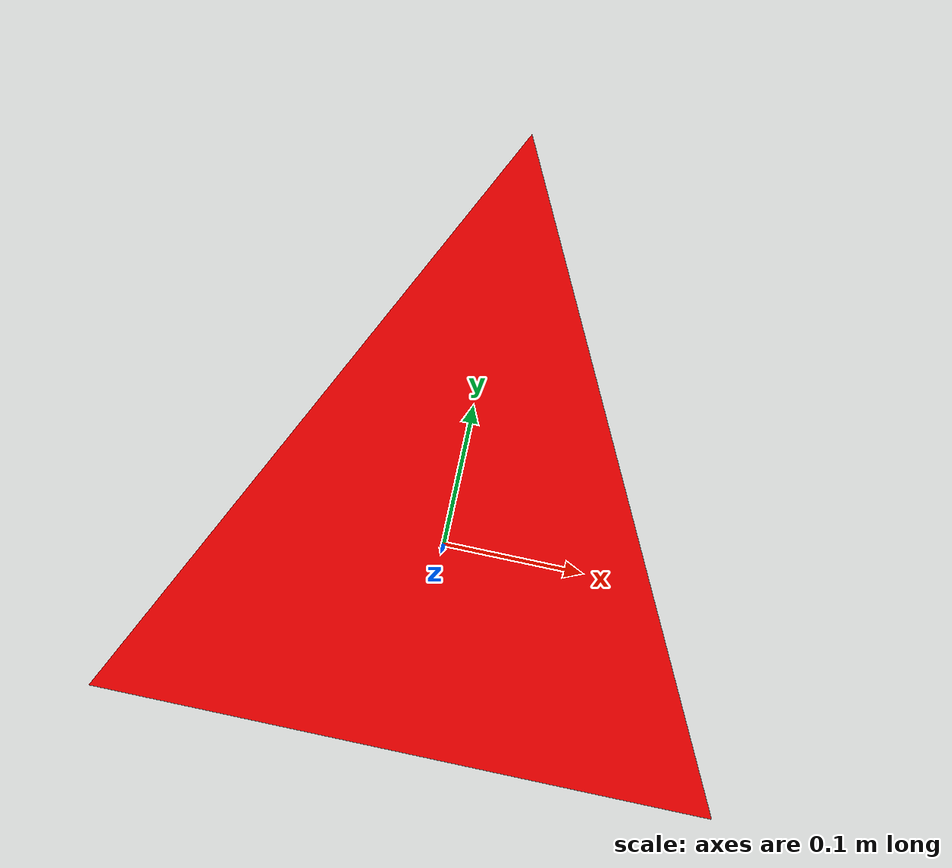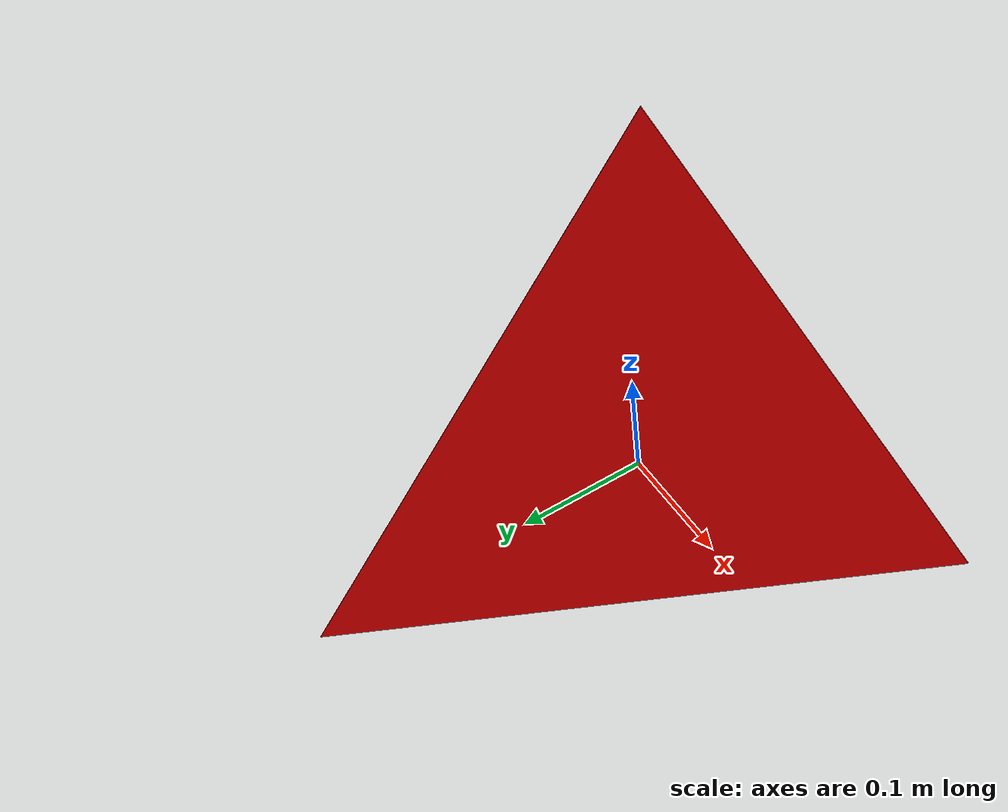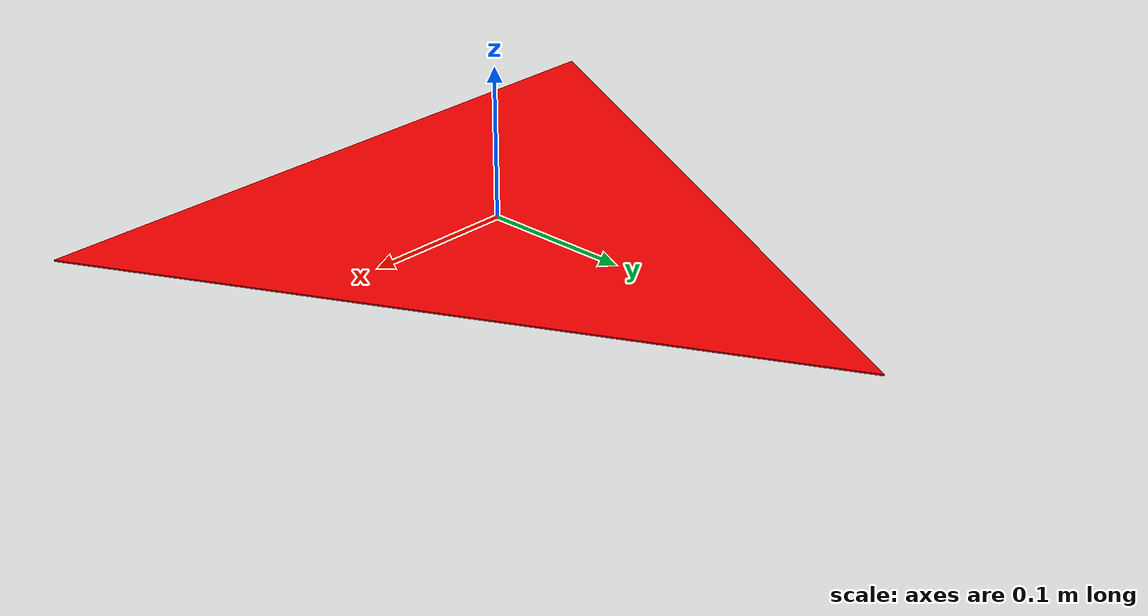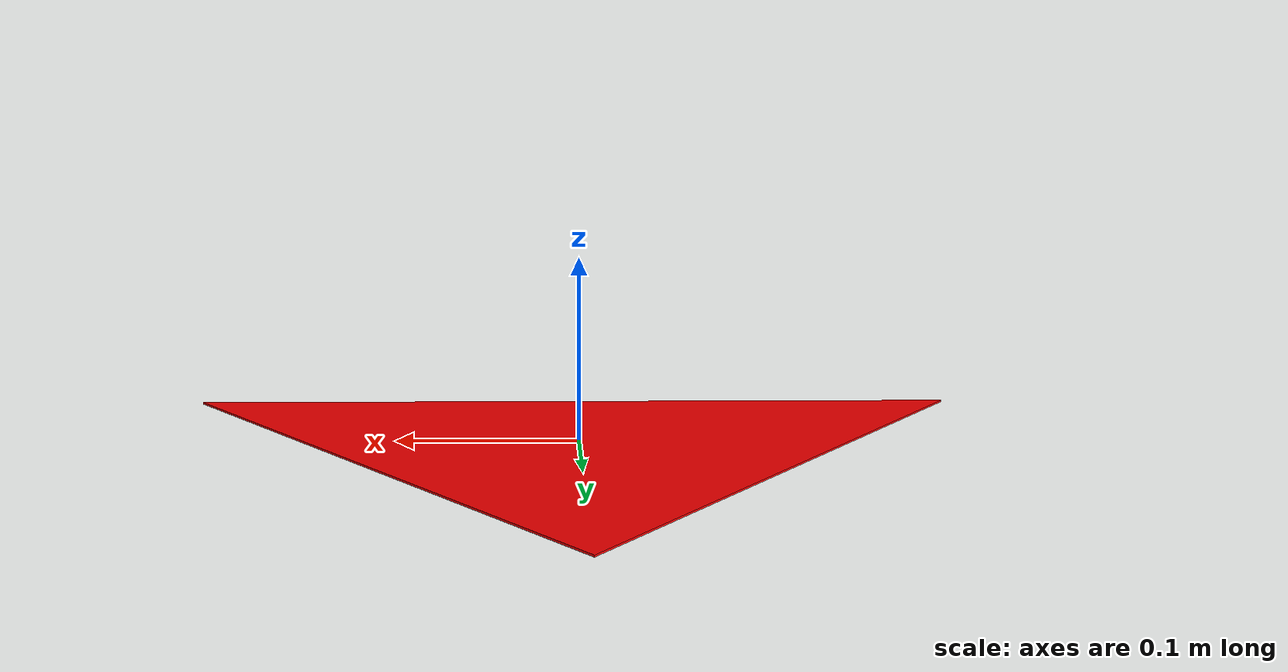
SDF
<?xml version="1.0" ?>
<sdf version="1.6">
    <model name="b3gen">
        <static>true</static>
        <link name="link">
            <collision name="b3gen_collision">
                <pose>0 0 0 0 0 0</pose>
                <geometry>
                    <cylinder>
                        <radius>0.05</radius>
                        <length>0.01</length>
                    </cylinder>
                </geometry>
            </collision>
            <visual name="b3gen_visual">
                <geometry>
                    <mesh>
                        <uri>model://b3gen/meshes/Triangle.dae</uri>
                    <scale>5 5 1</scale>
                    </mesh>
                </geometry>
                <material>
                    <ambient>1 0 0 1</ambient>
                    <diffuse>1 0 0 1</diffuse>
                    <specular>0.1 0.1 0.1 1</specular>
                </material>
            </visual>
        </link>
    </model>
</sdf>
